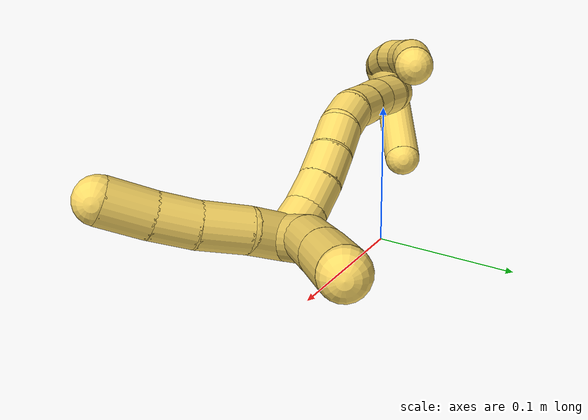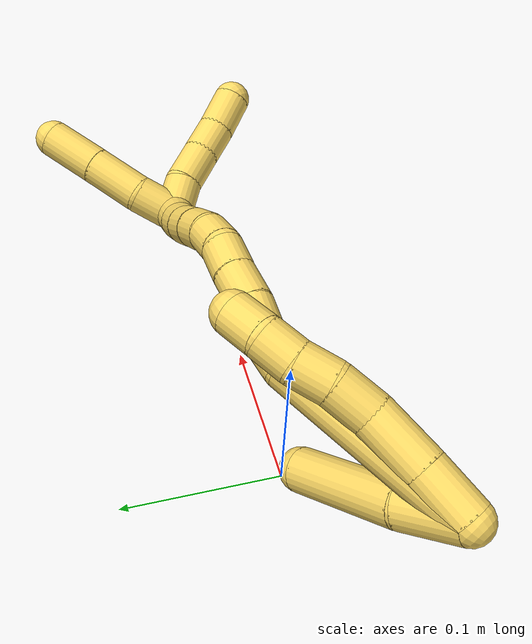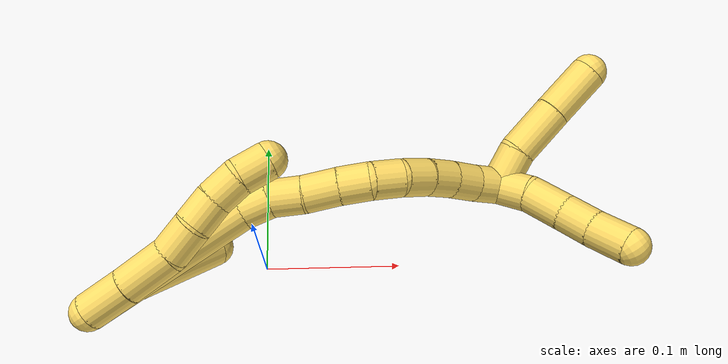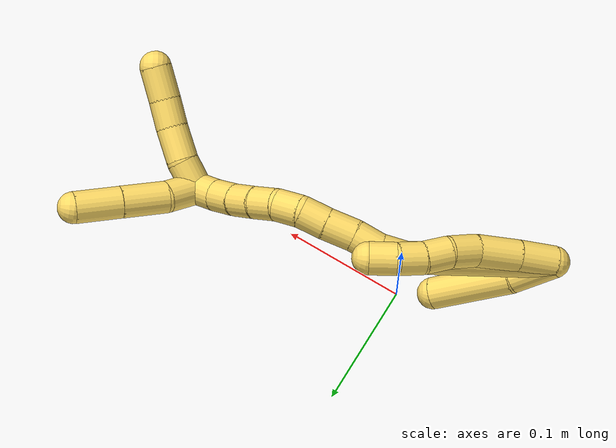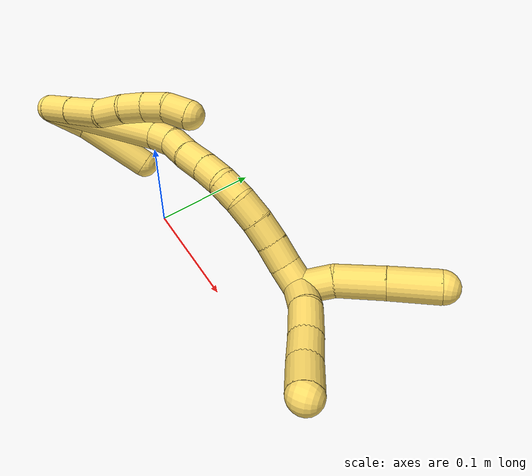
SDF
<sdf version="1.7">
 <world name="default">
  <model name="5">
   <static>0</static>
   <link name="5">
    <collision name="collision-cylinder-e_1_2_8">
     <pose>-0.001401 0.000399 -0.01482 -3.11467 -0.09423 2.58529</pose>
     <geometry><cylinder><radius>0.0125</radius><length>0.029782</length></cylinder></geometry>
     <surface>
      <friction><ode><mu>1.16</mu><mu2>1.16</mu2><slip1>0</slip1><slip2>0</slip2></ode></friction>
      <contact><ode><kp>1e+06</kp><kd>1</kd><max_vel>0</max_vel><min_depth>0.001</min_depth></ode></contact>
     </surface>
    </collision>
    <visual name="visual-cylinder-e_1_2_8">
     <pose>-0.001401 0.000399 -0.01482 -3.11467 -0.09423 2.58529</pose>
     <geometry><cylinder><radius>0.0125</radius><length>0.029782</length></cylinder></geometry>
     <material><ambient>1 0.858824 0.4 1</ambient></material>
    </visual>
    <collision name="collision-cylinder-e_2_8_9">
     <pose>-0.00421 0.000688 -0.046816 3.13515 -0.081798 -2.98451</pose>
     <geometry><cylinder><radius>0.0125</radius><length>0.034469</length></cylinder></geometry>
     <surface>
      <friction><ode><mu>1.16</mu><mu2>1.16</mu2><slip1>0</slip1><slip2>0</slip2></ode></friction>
      <contact><ode><kp>1e+06</kp><kd>1</kd><max_vel>0</max_vel><min_depth>0.001</min_depth></ode></contact>
     </surface>
    </collision>
    <visual name="visual-cylinder-e_2_8_9">
     <pose>-0.00421 0.000688 -0.046816 3.13515 -0.081798 -2.98451</pose>
     <geometry><cylinder><radius>0.0125</radius><length>0.034469</length></cylinder></geometry>
     <material><ambient>1 0.858824 0.4 1</ambient></material>
    </visual>
    <collision name="collision-cylinder-e_3_9_10">
     <pose>-0.007583 -0.002242 -0.075225 2.89573 -0.168002 -1.19636</pose>
     <geometry><cylinder><radius>0.0125</radius><length>0.023492</length></cylinder></geometry>
     <surface>
      <friction><ode><mu>1.16</mu><mu2>1.16</mu2><slip1>0</slip1><slip2>0</slip2></ode></friction>
      <contact><ode><kp>1e+06</kp><kd>1</kd><max_vel>0</max_vel><min_depth>0.001</min_depth></ode></contact>
     </surface>
    </collision>
    <visual name="visual-cylinder-e_3_9_10">
     <pose>-0.007583 -0.002242 -0.075225 2.89573 -0.168002 -1.19636</pose>
     <geometry><cylinder><radius>0.0125</radius><length>0.023492</length></cylinder></geometry>
     <material><ambient>1 0.858824 0.4 1</ambient></material>
    </visual>
    <collision name="collision-cylinder-e_4_10_11">
     <pose>-0.009341 -0.008263 -0.096332 2.82799 0.019838 0.125319</pose>
     <geometry><cylinder><radius>0.0125</radius><length>0.020767</length></cylinder></geometry>
     <surface>
      <friction><ode><mu>1.16</mu><mu2>1.16</mu2><slip1>0</slip1><slip2>0</slip2></ode></friction>
      <contact><ode><kp>1e+06</kp><kd>1</kd><max_vel>0</max_vel><min_depth>0.001</min_depth></ode></contact>
     </surface>
    </collision>
    <visual name="visual-cylinder-e_4_10_11">
     <pose>-0.009341 -0.008263 -0.096332 2.82799 0.019838 0.125319</pose>
     <geometry><cylinder><radius>0.0125</radius><length>0.020767</length></cylinder></geometry>
     <material><ambient>1 0.858824 0.4 1</ambient></material>
    </visual>
    <collision name="collision-cylinder-e_5_11_12">
     <pose>-0.009262 -0.012885 -0.116347 3.0025 -0.012435 -0.178043</pose>
     <geometry><cylinder><radius>0.0125</radius><length>0.020478</length></cylinder></geometry>
     <surface>
      <friction><ode><mu>1.16</mu><mu2>1.16</mu2><slip1>0</slip1><slip2>0</slip2></ode></friction>
      <contact><ode><kp>1e+06</kp><kd>1</kd><max_vel>0</max_vel><min_depth>0.001</min_depth></ode></contact>
     </surface>
    </collision>
    <visual name="visual-cylinder-e_5_11_12">
     <pose>-0.009262 -0.012885 -0.116347 3.0025 -0.012435 -0.178043</pose>
     <geometry><cylinder><radius>0.0125</radius><length>0.020478</length></cylinder></geometry>
     <material><ambient>1 0.858824 0.4 1</ambient></material>
    </visual>
    <collision name="collision-cylinder-e_6_12_6">
     <pose>-0.007177 -0.014071 -0.136754 -3.11883 0.212174 -2.92868</pose>
     <geometry><cylinder><radius>0.0125</radius><length>0.021012</length></cylinder></geometry>
     <surface>
      <friction><ode><mu>1.16</mu><mu2>1.16</mu2><slip1>0</slip1><slip2>0</slip2></ode></friction>
      <contact><ode><kp>1e+06</kp><kd>1</kd><max_vel>0</max_vel><min_depth>0.001</min_depth></ode></contact>
     </surface>
    </collision>
    <visual name="visual-cylinder-e_6_12_6">
     <pose>-0.007177 -0.014071 -0.136754 -3.11883 0.212174 -2.92868</pose>
     <geometry><cylinder><radius>0.0125</radius><length>0.021012</length></cylinder></geometry>
     <material><ambient>1 0.858824 0.4 1</ambient></material>
    </visual>
    <collision name="collision-cylinder-e_1_2_13">
     <pose>0.011215 -0.002891 -0.013277 2.92724 0.690012 2.55982</pose>
     <geometry><cylinder><radius>0.0125</radius><length>0.035238</length></cylinder></geometry>
     <surface>
      <friction><ode><mu>1.16</mu><mu2>1.16</mu2><slip1>0</slip1><slip2>0</slip2></ode></friction>
      <contact><ode><kp>1e+06</kp><kd>1</kd><max_vel>0</max_vel><min_depth>0.001</min_depth></ode></contact>
     </surface>
    </collision>
    <visual name="visual-cylinder-e_1_2_13">
     <pose>0.011215 -0.002891 -0.013277 2.92724 0.690012 2.55982</pose>
     <geometry><cylinder><radius>0.0125</radius><length>0.035238</length></cylinder></geometry>
     <material><ambient>1 0.858824 0.4 1</ambient></material>
    </visual>
    <collision name="collision-cylinder-e_2_13_5">
     <pose>0.043182 -0.005931 -0.051412 3.13557 0.695612 3.12497</pose>
     <geometry><cylinder><radius>0.0125</radius><length>0.064762</length></cylinder></geometry>
     <surface>
      <friction><ode><mu>1.16</mu><mu2>1.16</mu2><slip1>0</slip1><slip2>0</slip2></ode></friction>
      <contact><ode><kp>1e+06</kp><kd>1</kd><max_vel>0</max_vel><min_depth>0.001</min_depth></ode></contact>
     </surface>
    </collision>
    <visual name="visual-cylinder-e_2_13_5">
     <pose>0.043182 -0.005931 -0.051412 3.13557 0.695612 3.12497</pose>
     <geometry><cylinder><radius>0.0125</radius><length>0.064762</length></cylinder></geometry>
     <material><ambient>1 0.858824 0.4 1</ambient></material>
    </visual>
    <collision name="collision-cylinder-e_1_2_14">
     <pose>0.00665 -0.000871 -0.056733 3.12624 0.116672 2.88014</pose>
     <geometry><cylinder><radius>0.0125</radius><length>0.114257</length></cylinder></geometry>
     <surface>
      <friction><ode><mu>1.16</mu><mu2>1.16</mu2><slip1>0</slip1><slip2>0</slip2></ode></friction>
      <contact><ode><kp>1e+06</kp><kd>1</kd><max_vel>0</max_vel><min_depth>0.001</min_depth></ode></contact>
     </surface>
    </collision>
    <visual name="visual-cylinder-e_1_2_14">
     <pose>0.00665 -0.000871 -0.056733 3.12624 0.116672 2.88014</pose>
     <geometry><cylinder><radius>0.0125</radius><length>0.114257</length></cylinder></geometry>
     <material><ambient>1 0.858824 0.4 1</ambient></material>
    </visual>
    <collision name="collision-cylinder-e_2_14_15">
     <pose>0.013075 0.000359 -0.123607 -2.93723 -0.021781 0.211631</pose>
     <geometry><cylinder><radius>0.0125</radius><length>0.020716</length></cylinder></geometry>
     <surface>
      <friction><ode><mu>1.16</mu><mu2>1.16</mu2><slip1>0</slip1><slip2>0</slip2></ode></friction>
      <contact><ode><kp>1e+06</kp><kd>1</kd><max_vel>0</max_vel><min_depth>0.001</min_depth></ode></contact>
     </surface>
    </collision>
    <visual name="visual-cylinder-e_2_14_15">
     <pose>0.013075 0.000359 -0.123607 -2.93723 -0.021781 0.211631</pose>
     <geometry><cylinder><radius>0.0125</radius><length>0.020716</length></cylinder></geometry>
     <material><ambient>1 0.858824 0.4 1</ambient></material>
    </visual>
    <collision name="collision-cylinder-e_3_15_16">
     <pose>0.013069 0.007437 -0.143128 -2.65384 0.020682 -0.083074</pose>
     <geometry><cylinder><radius>0.0125</radius><length>0.021242</length></cylinder></geometry>
     <surface>
      <friction><ode><mu>1.16</mu><mu2>1.16</mu2><slip1>0</slip1><slip2>0</slip2></ode></friction>
      <contact><ode><kp>1e+06</kp><kd>1</kd><max_vel>0</max_vel><min_depth>0.001</min_depth></ode></contact>
     </surface>
    </collision>
    <visual name="visual-cylinder-e_3_15_16">
     <pose>0.013069 0.007437 -0.143128 -2.65384 0.020682 -0.083074</pose>
     <geometry><cylinder><radius>0.0125</radius><length>0.021242</length></cylinder></geometry>
     <material><ambient>1 0.858824 0.4 1</ambient></material>
    </visual>
    <collision name="collision-cylinder-e_4_16_17">
     <pose>0.01409 0.016571 -0.16333 -2.77474 0.069062 -0.368205</pose>
     <geometry><cylinder><radius>0.0125</radius><length>0.023241</length></cylinder></geometry>
     <surface>
      <friction><ode><mu>1.16</mu><mu2>1.16</mu2><slip1>0</slip1><slip2>0</slip2></ode></friction>
      <contact><ode><kp>1e+06</kp><kd>1</kd><max_vel>0</max_vel><min_depth>0.001</min_depth></ode></contact>
     </surface>
    </collision>
    <visual name="visual-cylinder-e_4_16_17">
     <pose>0.01409 0.016571 -0.16333 -2.77474 0.069062 -0.368205</pose>
     <geometry><cylinder><radius>0.0125</radius><length>0.023241</length></cylinder></geometry>
     <material><ambient>1 0.858824 0.4 1</ambient></material>
    </visual>
    <collision name="collision-cylinder-e_5_17_18">
     <pose>0.015476 0.025007 -0.183436 -2.70992 0.05701 -0.258636</pose>
     <geometry><cylinder><radius>0.0125</radius><length>0.020478</length></cylinder></geometry>
     <surface>
      <friction><ode><mu>1.16</mu><mu2>1.16</mu2><slip1>0</slip1><slip2>0</slip2></ode></friction>
      <contact><ode><kp>1e+06</kp><kd>1</kd><max_vel>0</max_vel><min_depth>0.001</min_depth></ode></contact>
     </surface>
    </collision>
    <visual name="visual-cylinder-e_5_17_18">
     <pose>0.015476 0.025007 -0.183436 -2.70992 0.05701 -0.258636</pose>
     <geometry><cylinder><radius>0.0125</radius><length>0.020478</length></cylinder></geometry>
     <material><ambient>1 0.858824 0.4 1</ambient></material>
    </visual>
    <collision name="collision-cylinder-e_6_18_19">
     <pose>0.02001 0.03305 -0.201125 -2.72027 0.405244 -1.53077</pose>
     <geometry><cylinder><radius>0.0125</radius><length>0.020044</length></cylinder></geometry>
     <surface>
      <friction><ode><mu>1.16</mu><mu2>1.16</mu2><slip1>0</slip1><slip2>0</slip2></ode></friction>
      <contact><ode><kp>1e+06</kp><kd>1</kd><max_vel>0</max_vel><min_depth>0.001</min_depth></ode></contact>
     </surface>
    </collision>
    <visual name="visual-cylinder-e_6_18_19">
     <pose>0.02001 0.03305 -0.201125 -2.72027 0.405244 -1.53077</pose>
     <geometry><cylinder><radius>0.0125</radius><length>0.020044</length></cylinder></geometry>
     <material><ambient>1 0.858824 0.4 1</ambient></material>
    </visual>
    <collision name="collision-cylinder-e_7_19_20">
     <pose>0.030271 0.039979 -0.216618 -2.72198 0.682599 -2.0615</pose>
     <geometry><cylinder><radius>0.0125</radius><length>0.020005</length></cylinder></geometry>
     <surface>
      <friction><ode><mu>1.16</mu><mu2>1.16</mu2><slip1>0</slip1><slip2>0</slip2></ode></friction>
      <contact><ode><kp>1e+06</kp><kd>1</kd><max_vel>0</max_vel><min_depth>0.001</min_depth></ode></contact>
     </surface>
    </collision>
    <visual name="visual-cylinder-e_7_19_20">
     <pose>0.030271 0.039979 -0.216618 -2.72198 0.682599 -2.0615</pose>
     <geometry><cylinder><radius>0.0125</radius><length>0.020005</length></cylinder></geometry>
     <material><ambient>1 0.858824 0.4 1</ambient></material>
    </visual>
    <collision name="collision-cylinder-e_8_20_21">
     <pose>0.043377 0.046786 -0.230084 -2.62241 0.746521 -1.94975</pose>
     <geometry><cylinder><radius>0.0125</radius><length>0.020015</length></cylinder></geometry>
     <surface>
      <friction><ode><mu>1.16</mu><mu2>1.16</mu2><slip1>0</slip1><slip2>0</slip2></ode></friction>
      <contact><ode><kp>1e+06</kp><kd>1</kd><max_vel>0</max_vel><min_depth>0.001</min_depth></ode></contact>
     </surface>
    </collision>
    <visual name="visual-cylinder-e_8_20_21">
     <pose>0.043377 0.046786 -0.230084 -2.62241 0.746521 -1.94975</pose>
     <geometry><cylinder><radius>0.0125</radius><length>0.020015</length></cylinder></geometry>
     <material><ambient>1 0.858824 0.4 1</ambient></material>
    </visual>
    <collision name="collision-cylinder-e_9_21_22">
     <pose>0.056627 0.054864 -0.242684 -2.52256 0.701479 -1.70498</pose>
     <geometry><cylinder><radius>0.0125</radius><length>0.020001</length></cylinder></geometry>
     <surface>
      <friction><ode><mu>1.16</mu><mu2>1.16</mu2><slip1>0</slip1><slip2>0</slip2></ode></friction>
      <contact><ode><kp>1e+06</kp><kd>1</kd><max_vel>0</max_vel><min_depth>0.001</min_depth></ode></contact>
     </surface>
    </collision>
    <visual name="visual-cylinder-e_9_21_22">
     <pose>0.056627 0.054864 -0.242684 -2.52256 0.701479 -1.70498</pose>
     <geometry><cylinder><radius>0.0125</radius><length>0.020001</length></cylinder></geometry>
     <material><ambient>1 0.858824 0.4 1</ambient></material>
    </visual>
    <collision name="collision-cylinder-e_10_22_1">
     <pose>0.068331 0.064137 -0.255906 -2.53665 0.552739 -1.47545</pose>
     <geometry><cylinder><radius>0.0125</radius><length>0.02</length></cylinder></geometry>
     <surface>
      <friction><ode><mu>1.16</mu><mu2>1.16</mu2><slip1>0</slip1><slip2>0</slip2></ode></friction>
      <contact><ode><kp>1e+06</kp><kd>1</kd><max_vel>0</max_vel><min_depth>0.001</min_depth></ode></contact>
     </surface>
    </collision>
    <visual name="visual-cylinder-e_10_22_1">
     <pose>0.068331 0.064137 -0.255906 -2.53665 0.552739 -1.47545</pose>
     <geometry><cylinder><radius>0.0125</radius><length>0.02</length></cylinder></geometry>
     <material><ambient>1 0.858824 0.4 1</ambient></material>
    </visual>
    <collision name="collision-cylinder-e_1_1_23">
     <pose>0.06932 0.078036 -0.26936 -2.18975 -0.365855 0.689183</pose>
     <geometry><cylinder><radius>0.0125</radius><length>0.023822</length></cylinder></geometry>
     <surface>
      <friction><ode><mu>1.16</mu><mu2>1.16</mu2><slip1>0</slip1><slip2>0</slip2></ode></friction>
      <contact><ode><kp>1e+06</kp><kd>1</kd><max_vel>0</max_vel><min_depth>0.001</min_depth></ode></contact>
     </surface>
    </collision>
    <visual name="visual-cylinder-e_1_1_23">
     <pose>0.06932 0.078036 -0.26936 -2.18975 -0.365855 0.689183</pose>
     <geometry><cylinder><radius>0.0125</radius><length>0.023822</length></cylinder></geometry>
     <material><ambient>1 0.858824 0.4 1</ambient></material>
    </visual>
    <collision name="collision-cylinder-e_2_23_24">
     <pose>0.061456 0.099074 -0.280852 -1.96893 -0.270441 0.404045</pose>
     <geometry><cylinder><radius>0.0125</radius><length>0.02697</length></cylinder></geometry>
     <surface>
      <friction><ode><mu>1.16</mu><mu2>1.16</mu2><slip1>0</slip1><slip2>0</slip2></ode></friction>
      <contact><ode><kp>1e+06</kp><kd>1</kd><max_vel>0</max_vel><min_depth>0.001</min_depth></ode></contact>
     </surface>
    </collision>
    <visual name="visual-cylinder-e_2_23_24">
     <pose>0.061456 0.099074 -0.280852 -1.96893 -0.270441 0.404045</pose>
     <geometry><cylinder><radius>0.0125</radius><length>0.02697</length></cylinder></geometry>
     <material><ambient>1 0.858824 0.4 1</ambient></material>
    </visual>
    <collision name="collision-cylinder-e_3_24_25">
     <pose>0.053729 0.120908 -0.289746 -1.94374 -0.371612 0.537465</pose>
     <geometry><cylinder><radius>0.0125</radius><length>0.022716</length></cylinder></geometry>
     <surface>
      <friction><ode><mu>1.16</mu><mu2>1.16</mu2><slip1>0</slip1><slip2>0</slip2></ode></friction>
      <contact><ode><kp>1e+06</kp><kd>1</kd><max_vel>0</max_vel><min_depth>0.001</min_depth></ode></contact>
     </surface>
    </collision>
    <visual name="visual-cylinder-e_3_24_25">
     <pose>0.053729 0.120908 -0.289746 -1.94374 -0.371612 0.537465</pose>
     <geometry><cylinder><radius>0.0125</radius><length>0.022716</length></cylinder></geometry>
     <material><ambient>1 0.858824 0.4 1</ambient></material>
    </visual>
    <collision name="collision-cylinder-e_4_25_4">
     <pose>0.043932 0.141682 -0.298505 -1.99287 -0.442611 0.669195</pose>
     <geometry><cylinder><radius>0.0125</radius><length>0.026491</length></cylinder></geometry>
     <surface>
      <friction><ode><mu>1.16</mu><mu2>1.16</mu2><slip1>0</slip1><slip2>0</slip2></ode></friction>
      <contact><ode><kp>1e+06</kp><kd>1</kd><max_vel>0</max_vel><min_depth>0.001</min_depth></ode></contact>
     </surface>
    </collision>
    <visual name="visual-cylinder-e_4_25_4">
     <pose>0.043932 0.141682 -0.298505 -1.99287 -0.442611 0.669195</pose>
     <geometry><cylinder><radius>0.0125</radius><length>0.026491</length></cylinder></geometry>
     <material><ambient>1 0.858824 0.4 1</ambient></material>
    </visual>
    <collision name="collision-cylinder-e_1_1_26">
     <pose>0.071808 0.063043 -0.274801 2.67881 -0.132607 -0.549396</pose>
     <geometry><cylinder><radius>0.0125</radius><length>0.026819</length></cylinder></geometry>
     <surface>
      <friction><ode><mu>1.16</mu><mu2>1.16</mu2><slip1>0</slip1><slip2>0</slip2></ode></friction>
      <contact><ode><kp>1e+06</kp><kd>1</kd><max_vel>0</max_vel><min_depth>0.001</min_depth></ode></contact>
     </surface>
    </collision>
    <visual name="visual-cylinder-e_1_1_26">
     <pose>0.071808 0.063043 -0.274801 2.67881 -0.132607 -0.549396</pose>
     <geometry><cylinder><radius>0.0125</radius><length>0.026819</length></cylinder></geometry>
     <material><ambient>1 0.858824 0.4 1</ambient></material>
    </visual>
    <collision name="collision-cylinder-e_2_26_27">
     <pose>0.069668 0.05272 -0.304419 2.89885 -0.020108 -0.164495</pose>
     <geometry><cylinder><radius>0.0125</radius><length>0.036528</length></cylinder></geometry>
     <surface>
      <friction><ode><mu>1.16</mu><mu2>1.16</mu2><slip1>0</slip1><slip2>0</slip2></ode></friction>
      <contact><ode><kp>1e+06</kp><kd>1</kd><max_vel>0</max_vel><min_depth>0.001</min_depth></ode></contact>
     </surface>
    </collision>
    <visual name="visual-cylinder-e_2_26_27">
     <pose>0.069668 0.05272 -0.304419 2.89885 -0.020108 -0.164495</pose>
     <geometry><cylinder><radius>0.0125</radius><length>0.036528</length></cylinder></geometry>
     <material><ambient>1 0.858824 0.4 1</ambient></material>
    </visual>
    <collision name="collision-cylinder-e_3_27_3">
     <pose>0.069371 0.044088 -0.339973 2.90799 0.003813 0.032495</pose>
     <geometry><cylinder><radius>0.0125</radius><length>0.036653</length></cylinder></geometry>
     <surface>
      <friction><ode><mu>1.16</mu><mu2>1.16</mu2><slip1>0</slip1><slip2>0</slip2></ode></friction>
      <contact><ode><kp>1e+06</kp><kd>1</kd><max_vel>0</max_vel><min_depth>0.001</min_depth></ode></contact>
     </surface>
    </collision>
    <visual name="visual-cylinder-e_3_27_3">
     <pose>0.069371 0.044088 -0.339973 2.90799 0.003813 0.032495</pose>
     <geometry><cylinder><radius>0.0125</radius><length>0.036653</length></cylinder></geometry>
     <material><ambient>1 0.858824 0.4 1</ambient></material>
    </visual>
    <collision name="collision-sphere-3">
     <pose>0.06944 0.039846 -0.357801 0 -0 0</pose>
     <geometry><sphere><radius>0.0125</radius></sphere></geometry>
     <surface>
      <friction><ode><mu>1.16</mu><mu2>1.16</mu2><slip1>0</slip1><slip2>0</slip2></ode></friction>
      <contact><ode><kp>1e+06</kp><kd>1</kd><max_vel>0</max_vel><min_depth>0.001</min_depth></ode></contact>
     </surface>
    </collision>
    <visual name="visual-sphere-3">
     <pose>0.06944 0.039846 -0.357801 0 -0 0</pose>
     <geometry><sphere><radius>0.0125</radius></sphere></geometry>
     <material><ambient>1 0.858824 0.4 1</ambient></material>
    </visual>
    <collision name="collision-sphere-27">
     <pose>0.069301 0.04833 -0.322145 0 -0 0</pose>
     <geometry><sphere><radius>0.0125</radius></sphere></geometry>
     <surface>
      <friction><ode><mu>1.16</mu><mu2>1.16</mu2><slip1>0</slip1><slip2>0</slip2></ode></friction>
      <contact><ode><kp>1e+06</kp><kd>1</kd><max_vel>0</max_vel><min_depth>0.001</min_depth></ode></contact>
     </surface>
    </collision>
    <visual name="visual-sphere-27">
     <pose>0.069301 0.04833 -0.322145 0 -0 0</pose>
     <geometry><sphere><radius>0.0125</radius></sphere></geometry>
     <material><ambient>1 0.858824 0.4 1</ambient></material>
    </visual>
    <collision name="collision-sphere-26">
     <pose>0.070035 0.057109 -0.286694 0 -0 0</pose>
     <geometry><sphere><radius>0.0125</radius></sphere></geometry>
     <surface>
      <friction><ode><mu>1.16</mu><mu2>1.16</mu2><slip1>0</slip1><slip2>0</slip2></ode></friction>
      <contact><ode><kp>1e+06</kp><kd>1</kd><max_vel>0</max_vel><min_depth>0.001</min_depth></ode></contact>
     </surface>
    </collision>
    <visual name="visual-sphere-26">
     <pose>0.070035 0.057109 -0.286694 0 -0 0</pose>
     <geometry><sphere><radius>0.0125</radius></sphere></geometry>
     <material><ambient>1 0.858824 0.4 1</ambient></material>
    </visual>
    <collision name="collision-sphere-4">
     <pose>0.038259 0.152601 -0.303408 0 -0 0</pose>
     <geometry><sphere><radius>0.0125</radius></sphere></geometry>
     <surface>
      <friction><ode><mu>1.16</mu><mu2>1.16</mu2><slip1>0</slip1><slip2>0</slip2></ode></friction>
      <contact><ode><kp>1e+06</kp><kd>1</kd><max_vel>0</max_vel><min_depth>0.001</min_depth></ode></contact>
     </surface>
    </collision>
    <visual name="visual-sphere-4">
     <pose>0.038259 0.152601 -0.303408 0 -0 0</pose>
     <geometry><sphere><radius>0.0125</radius></sphere></geometry>
     <material><ambient>1 0.858824 0.4 1</ambient></material>
    </visual>
    <collision name="collision-sphere-25">
     <pose>0.049605 0.130764 -0.293602 0 -0 0</pose>
     <geometry><sphere><radius>0.0125</radius></sphere></geometry>
     <surface>
      <friction><ode><mu>1.16</mu><mu2>1.16</mu2><slip1>0</slip1><slip2>0</slip2></ode></friction>
      <contact><ode><kp>1e+06</kp><kd>1</kd><max_vel>0</max_vel><min_depth>0.001</min_depth></ode></contact>
     </surface>
    </collision>
    <visual name="visual-sphere-25">
     <pose>0.049605 0.130764 -0.293602 0 -0 0</pose>
     <geometry><sphere><radius>0.0125</radius></sphere></geometry>
     <material><ambient>1 0.858824 0.4 1</ambient></material>
    </visual>
    <collision name="collision-sphere-24">
     <pose>0.057853 0.111053 -0.28589 0 -0 0</pose>
     <geometry><sphere><radius>0.0125</radius></sphere></geometry>
     <surface>
      <friction><ode><mu>1.16</mu><mu2>1.16</mu2><slip1>0</slip1><slip2>0</slip2></ode></friction>
      <contact><ode><kp>1e+06</kp><kd>1</kd><max_vel>0</max_vel><min_depth>0.001</min_depth></ode></contact>
     </surface>
    </collision>
    <visual name="visual-sphere-24">
     <pose>0.057853 0.111053 -0.28589 0 -0 0</pose>
     <geometry><sphere><radius>0.0125</radius></sphere></geometry>
     <material><ambient>1 0.858824 0.4 1</ambient></material>
    </visual>
    <collision name="collision-sphere-23">
     <pose>0.065059 0.087096 -0.275814 0 -0 0</pose>
     <geometry><sphere><radius>0.0125</radius></sphere></geometry>
     <surface>
      <friction><ode><mu>1.16</mu><mu2>1.16</mu2><slip1>0</slip1><slip2>0</slip2></ode></friction>
      <contact><ode><kp>1e+06</kp><kd>1</kd><max_vel>0</max_vel><min_depth>0.001</min_depth></ode></contact>
     </surface>
    </collision>
    <visual name="visual-sphere-23">
     <pose>0.065059 0.087096 -0.275814 0 -0 0</pose>
     <geometry><sphere><radius>0.0125</radius></sphere></geometry>
     <material><ambient>1 0.858824 0.4 1</ambient></material>
    </visual>
    <collision name="collision-sphere-1">
     <pose>0.073581 0.068977 -0.262907 0 -0 0</pose>
     <geometry><sphere><radius>0.0125</radius></sphere></geometry>
     <surface>
      <friction><ode><mu>1.16</mu><mu2>1.16</mu2><slip1>0</slip1><slip2>0</slip2></ode></friction>
      <contact><ode><kp>1e+06</kp><kd>1</kd><max_vel>0</max_vel><min_depth>0.001</min_depth></ode></contact>
     </surface>
    </collision>
    <visual name="visual-sphere-1">
     <pose>0.073581 0.068977 -0.262907 0 -0 0</pose>
     <geometry><sphere><radius>0.0125</radius></sphere></geometry>
     <material><ambient>1 0.858824 0.4 1</ambient></material>
    </visual>
    <collision name="collision-sphere-22">
     <pose>0.063081 0.059296 -0.248906 0 -0 0</pose>
     <geometry><sphere><radius>0.0125</radius></sphere></geometry>
     <surface>
      <friction><ode><mu>1.16</mu><mu2>1.16</mu2><slip1>0</slip1><slip2>0</slip2></ode></friction>
      <contact><ode><kp>1e+06</kp><kd>1</kd><max_vel>0</max_vel><min_depth>0.001</min_depth></ode></contact>
     </surface>
    </collision>
    <visual name="visual-sphere-22">
     <pose>0.063081 0.059296 -0.248906 0 -0 0</pose>
     <geometry><sphere><radius>0.0125</radius></sphere></geometry>
     <material><ambient>1 0.858824 0.4 1</ambient></material>
    </visual>
    <collision name="collision-sphere-21">
     <pose>0.050173 0.050431 -0.236462 0 -0 0</pose>
     <geometry><sphere><radius>0.0125</radius></sphere></geometry>
     <surface>
      <friction><ode><mu>1.16</mu><mu2>1.16</mu2><slip1>0</slip1><slip2>0</slip2></ode></friction>
      <contact><ode><kp>1e+06</kp><kd>1</kd><max_vel>0</max_vel><min_depth>0.001</min_depth></ode></contact>
     </surface>
    </collision>
    <visual name="visual-sphere-21">
     <pose>0.050173 0.050431 -0.236462 0 -0 0</pose>
     <geometry><sphere><radius>0.0125</radius></sphere></geometry>
     <material><ambient>1 0.858824 0.4 1</ambient></material>
    </visual>
    <collision name="collision-sphere-12">
     <pose>-0.009389 -0.014304 -0.126486 0 -0 0</pose>
     <geometry><sphere><radius>0.0125</radius></sphere></geometry>
     <surface>
      <friction><ode><mu>1.16</mu><mu2>1.16</mu2><slip1>0</slip1><slip2>0</slip2></ode></friction>
      <contact><ode><kp>1e+06</kp><kd>1</kd><max_vel>0</max_vel><min_depth>0.001</min_depth></ode></contact>
     </surface>
    </collision>
    <visual name="visual-sphere-12">
     <pose>-0.009389 -0.014304 -0.126486 0 -0 0</pose>
     <geometry><sphere><radius>0.0125</radius></sphere></geometry>
     <material><ambient>1 0.858824 0.4 1</ambient></material>
    </visual>
    <collision name="collision-sphere-11">
     <pose>-0.009135 -0.011465 -0.106207 0 -0 0</pose>
     <geometry><sphere><radius>0.0125</radius></sphere></geometry>
     <surface>
      <friction><ode><mu>1.16</mu><mu2>1.16</mu2><slip1>0</slip1><slip2>0</slip2></ode></friction>
      <contact><ode><kp>1e+06</kp><kd>1</kd><max_vel>0</max_vel><min_depth>0.001</min_depth></ode></contact>
     </surface>
    </collision>
    <visual name="visual-sphere-11">
     <pose>-0.009135 -0.011465 -0.106207 0 -0 0</pose>
     <geometry><sphere><radius>0.0125</radius></sphere></geometry>
     <material><ambient>1 0.858824 0.4 1</ambient></material>
    </visual>
    <collision name="collision-sphere-10">
     <pose>-0.009547 -0.00506 -0.086457 0 -0 0</pose>
     <geometry><sphere><radius>0.0125</radius></sphere></geometry>
     <surface>
      <friction><ode><mu>1.16</mu><mu2>1.16</mu2><slip1>0</slip1><slip2>0</slip2></ode></friction>
      <contact><ode><kp>1e+06</kp><kd>1</kd><max_vel>0</max_vel><min_depth>0.001</min_depth></ode></contact>
     </surface>
    </collision>
    <visual name="visual-sphere-10">
     <pose>-0.009547 -0.00506 -0.086457 0 -0 0</pose>
     <geometry><sphere><radius>0.0125</radius></sphere></geometry>
     <material><ambient>1 0.858824 0.4 1</ambient></material>
    </visual>
    <collision name="collision-sphere-9">
     <pose>-0.005619 0.000577 -0.063992 0 -0 0</pose>
     <geometry><sphere><radius>0.0125</radius></sphere></geometry>
     <surface>
      <friction><ode><mu>1.16</mu><mu2>1.16</mu2><slip1>0</slip1><slip2>0</slip2></ode></friction>
      <contact><ode><kp>1e+06</kp><kd>1</kd><max_vel>0</max_vel><min_depth>0.001</min_depth></ode></contact>
     </surface>
    </collision>
    <visual name="visual-sphere-9">
     <pose>-0.005619 0.000577 -0.063992 0 -0 0</pose>
     <geometry><sphere><radius>0.0125</radius></sphere></geometry>
     <material><ambient>1 0.858824 0.4 1</ambient></material>
    </visual>
    <collision name="collision-sphere-2">
     <geometry><sphere><radius>0.0125</radius></sphere></geometry>
     <surface>
      <friction><ode><mu>1.16</mu><mu2>1.16</mu2><slip1>0</slip1><slip2>0</slip2></ode></friction>
      <contact><ode><kp>1e+06</kp><kd>1</kd><max_vel>0</max_vel><min_depth>0.001</min_depth></ode></contact>
     </surface>
    </collision>
    <visual name="visual-sphere-2">
     <geometry><sphere><radius>0.0125</radius></sphere></geometry>
     <material><ambient>1 0.858824 0.4 1</ambient></material>
    </visual>
    <collision name="collision-sphere-19">
     <pose>0.023961 0.036817 -0.20953 0 -0 0</pose>
     <geometry><sphere><radius>0.0125</radius></sphere></geometry>
     <surface>
      <friction><ode><mu>1.16</mu><mu2>1.16</mu2><slip1>0</slip1><slip2>0</slip2></ode></friction>
      <contact><ode><kp>1e+06</kp><kd>1</kd><max_vel>0</max_vel><min_depth>0.001</min_depth></ode></contact>
     </surface>
    </collision>
    <visual name="visual-sphere-19">
     <pose>0.023961 0.036817 -0.20953 0 -0 0</pose>
     <geometry><sphere><radius>0.0125</radius></sphere></geometry>
     <material><ambient>1 0.858824 0.4 1</ambient></material>
    </visual>
    <collision name="collision-sphere-8">
     <pose>-0.002802 0.000798 -0.029639 0 -0 0</pose>
     <geometry><sphere><radius>0.0125</radius></sphere></geometry>
     <surface>
      <friction><ode><mu>1.16</mu><mu2>1.16</mu2><slip1>0</slip1><slip2>0</slip2></ode></friction>
      <contact><ode><kp>1e+06</kp><kd>1</kd><max_vel>0</max_vel><min_depth>0.001</min_depth></ode></contact>
     </surface>
    </collision>
    <visual name="visual-sphere-8">
     <pose>-0.002802 0.000798 -0.029639 0 -0 0</pose>
     <geometry><sphere><radius>0.0125</radius></sphere></geometry>
     <material><ambient>1 0.858824 0.4 1</ambient></material>
    </visual>
    <collision name="collision-sphere-6">
     <pose>-0.004965 -0.013837 -0.147021 0 -0 0</pose>
     <geometry><sphere><radius>0.0125</radius></sphere></geometry>
     <surface>
      <friction><ode><mu>1.16</mu><mu2>1.16</mu2><slip1>0</slip1><slip2>0</slip2></ode></friction>
      <contact><ode><kp>1e+06</kp><kd>1</kd><max_vel>0</max_vel><min_depth>0.001</min_depth></ode></contact>
     </surface>
    </collision>
    <visual name="visual-sphere-6">
     <pose>-0.004965 -0.013837 -0.147021 0 -0 0</pose>
     <geometry><sphere><radius>0.0125</radius></sphere></geometry>
     <material><ambient>1 0.858824 0.4 1</ambient></material>
    </visual>
    <collision name="collision-sphere-13">
     <pose>0.022431 -0.005781 -0.026555 0 -0 0</pose>
     <geometry><sphere><radius>0.0125</radius></sphere></geometry>
     <surface>
      <friction><ode><mu>1.16</mu><mu2>1.16</mu2><slip1>0</slip1><slip2>0</slip2></ode></friction>
      <contact><ode><kp>1e+06</kp><kd>1</kd><max_vel>0</max_vel><min_depth>0.001</min_depth></ode></contact>
     </surface>
    </collision>
    <visual name="visual-sphere-13">
     <pose>0.022431 -0.005781 -0.026555 0 -0 0</pose>
     <geometry><sphere><radius>0.0125</radius></sphere></geometry>
     <material><ambient>1 0.858824 0.4 1</ambient></material>
    </visual>
    <collision name="collision-sphere-5">
     <pose>0.063934 -0.006081 -0.076269 0 -0 0</pose>
     <geometry><sphere><radius>0.0125</radius></sphere></geometry>
     <surface>
      <friction><ode><mu>1.16</mu><mu2>1.16</mu2><slip1>0</slip1><slip2>0</slip2></ode></friction>
      <contact><ode><kp>1e+06</kp><kd>1</kd><max_vel>0</max_vel><min_depth>0.001</min_depth></ode></contact>
     </surface>
    </collision>
    <visual name="visual-sphere-5">
     <pose>0.063934 -0.006081 -0.076269 0 -0 0</pose>
     <geometry><sphere><radius>0.0125</radius></sphere></geometry>
     <material><ambient>1 0.858824 0.4 1</ambient></material>
    </visual>
    <collision name="collision-sphere-14">
     <pose>0.0133 -0.001743 -0.113467 0 -0 0</pose>
     <geometry><sphere><radius>0.0125</radius></sphere></geometry>
     <surface>
      <friction><ode><mu>1.16</mu><mu2>1.16</mu2><slip1>0</slip1><slip2>0</slip2></ode></friction>
      <contact><ode><kp>1e+06</kp><kd>1</kd><max_vel>0</max_vel><min_depth>0.001</min_depth></ode></contact>
     </surface>
    </collision>
    <visual name="visual-sphere-14">
     <pose>0.0133 -0.001743 -0.113467 0 -0 0</pose>
     <geometry><sphere><radius>0.0125</radius></sphere></geometry>
     <material><ambient>1 0.858824 0.4 1</ambient></material>
    </visual>
    <collision name="collision-sphere-15">
     <pose>0.012849 0.002461 -0.133747 0 -0 0</pose>
     <geometry><sphere><radius>0.0125</radius></sphere></geometry>
     <surface>
      <friction><ode><mu>1.16</mu><mu2>1.16</mu2><slip1>0</slip1><slip2>0</slip2></ode></friction>
      <contact><ode><kp>1e+06</kp><kd>1</kd><max_vel>0</max_vel><min_depth>0.001</min_depth></ode></contact>
     </surface>
    </collision>
    <visual name="visual-sphere-15">
     <pose>0.012849 0.002461 -0.133747 0 -0 0</pose>
     <geometry><sphere><radius>0.0125</radius></sphere></geometry>
     <material><ambient>1 0.858824 0.4 1</ambient></material>
    </visual>
    <collision name="collision-sphere-16">
     <pose>0.013288 0.012413 -0.152508 0 -0 0</pose>
     <geometry><sphere><radius>0.0125</radius></sphere></geometry>
     <surface>
      <friction><ode><mu>1.16</mu><mu2>1.16</mu2><slip1>0</slip1><slip2>0</slip2></ode></friction>
      <contact><ode><kp>1e+06</kp><kd>1</kd><max_vel>0</max_vel><min_depth>0.001</min_depth></ode></contact>
     </surface>
    </collision>
    <visual name="visual-sphere-16">
     <pose>0.013288 0.012413 -0.152508 0 -0 0</pose>
     <geometry><sphere><radius>0.0125</radius></sphere></geometry>
     <material><ambient>1 0.858824 0.4 1</ambient></material>
    </visual>
    <collision name="collision-sphere-17">
     <pose>0.014892 0.02073 -0.174151 0 -0 0</pose>
     <geometry><sphere><radius>0.0125</radius></sphere></geometry>
     <surface>
      <friction><ode><mu>1.16</mu><mu2>1.16</mu2><slip1>0</slip1><slip2>0</slip2></ode></friction>
      <contact><ode><kp>1e+06</kp><kd>1</kd><max_vel>0</max_vel><min_depth>0.001</min_depth></ode></contact>
     </surface>
    </collision>
    <visual name="visual-sphere-17">
     <pose>0.014892 0.02073 -0.174151 0 -0 0</pose>
     <geometry><sphere><radius>0.0125</radius></sphere></geometry>
     <material><ambient>1 0.858824 0.4 1</ambient></material>
    </visual>
    <collision name="collision-sphere-18">
     <pose>0.016059 0.029283 -0.19272 0 -0 0</pose>
     <geometry><sphere><radius>0.0125</radius></sphere></geometry>
     <surface>
      <friction><ode><mu>1.16</mu><mu2>1.16</mu2><slip1>0</slip1><slip2>0</slip2></ode></friction>
      <contact><ode><kp>1e+06</kp><kd>1</kd><max_vel>0</max_vel><min_depth>0.001</min_depth></ode></contact>
     </surface>
    </collision>
    <visual name="visual-sphere-18">
     <pose>0.016059 0.029283 -0.19272 0 -0 0</pose>
     <geometry><sphere><radius>0.0125</radius></sphere></geometry>
     <material><ambient>1 0.858824 0.4 1</ambient></material>
    </visual>
    <collision name="collision-sphere-20">
     <pose>0.036581 0.043141 -0.223706 0 -0 0</pose>
     <geometry><sphere><radius>0.0125</radius></sphere></geometry>
     <surface>
      <friction><ode><mu>1.16</mu><mu2>1.16</mu2><slip1>0</slip1><slip2>0</slip2></ode></friction>
      <contact><ode><kp>1e+06</kp><kd>1</kd><max_vel>0</max_vel><min_depth>0.001</min_depth></ode></contact>
     </surface>
    </collision>
    <visual name="visual-sphere-20">
     <pose>0.036581 0.043141 -0.223706 0 -0 0</pose>
     <geometry><sphere><radius>0.0125</radius></sphere></geometry>
     <material><ambient>1 0.858824 0.4 1</ambient></material>
    </visual>
    <inertial>
     <pose>0.028434 0.027695 -0.155848 0 -0 0</pose>
     <mass>0.75</mass>
     <inertia>
      <ixx>-8.8e-05</ixx>
      <ixy>0</ixy>
      <ixz>0</ixz>
      <iyy>0.000181</iyy>
      <iyz>0</iyz>
      <izz>-8.8e-05</izz>
     </inertia>
    </inertial>
   </link>
   <pose>-0.1016 -0.05474 0.096685 -2.78368 1.31892 0.900604</pose>
  </model>
 </world>
</sdf>
